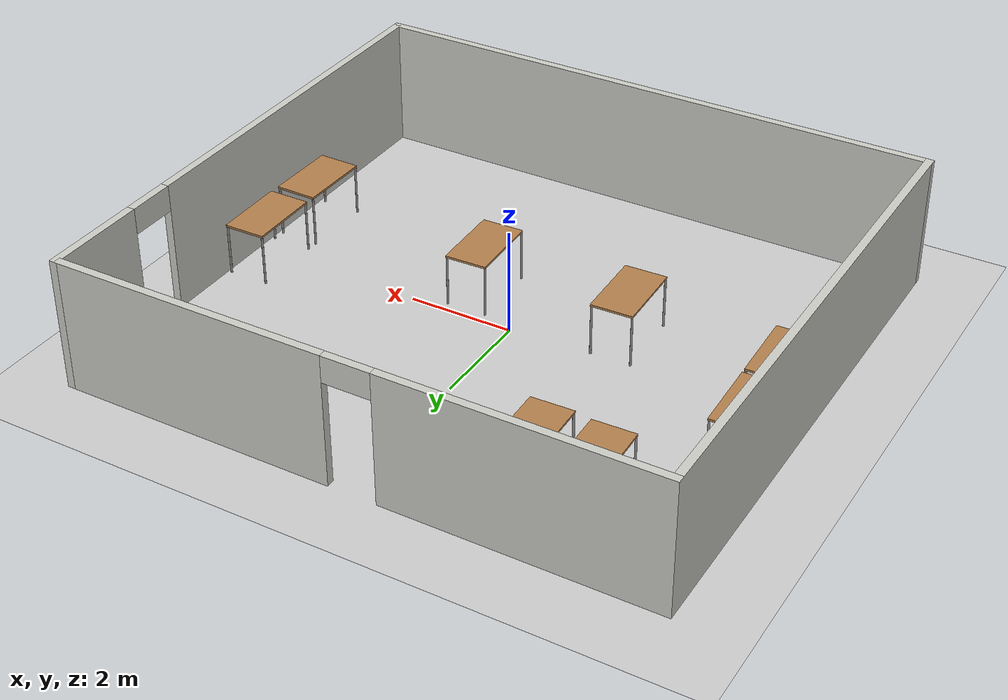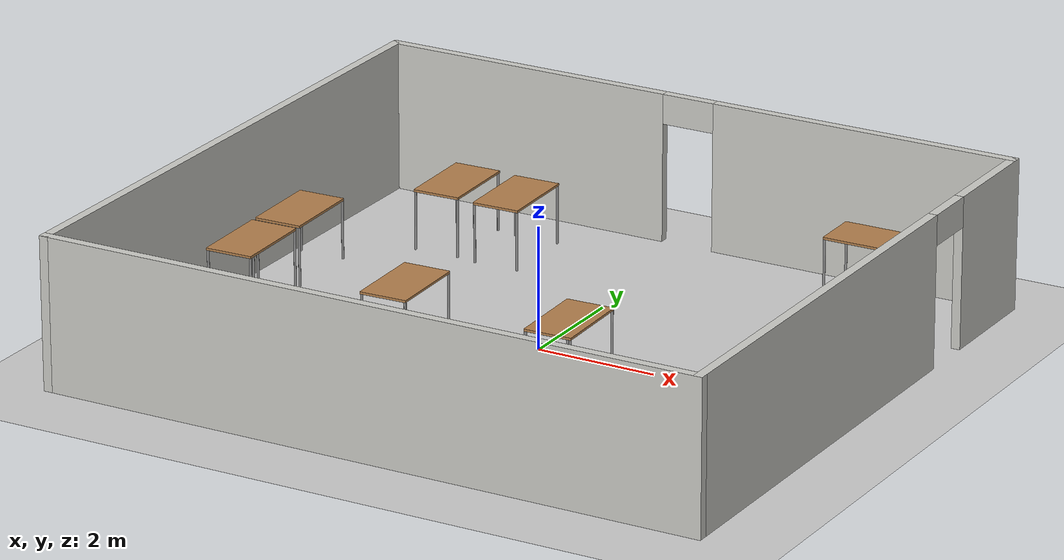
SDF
<sdf version="1.6">
 <world name="default">
  <light name="sun" type="directional">
   <pose>0 0 10 0 -0 0</pose>
   <diffuse>0.8 0.8 0.8 1</diffuse>
   <specular>0.1 0.1 0.1 1</specular>
   <attenuation>
    <range>1000</range>
    <constant>0.9</constant>
    <linear>0.01</linear>
    <quadratic>0.001</quadratic>
   </attenuation>
   <direction>-0.5 0.5 -1</direction>
  </light>
  <model name="ground_plane">
   <static>1</static>
   <link name="link">
    <collision name="collision">
     <geometry><plane><normal>0 0 1</normal><size>100 100</size></plane></geometry>
     <surface><friction><ode><mu>100</mu><mu2>50</mu2></ode></friction></surface>
    </collision>
    <visual name="visual">
     <cast_shadows>0</cast_shadows>
     <geometry><plane><normal>0 0 1</normal><size>100 100</size></plane></geometry>
     <material>
      <script><uri>file://media/materials/scripts/gazebo.material</uri><name>Gazebo/Grey</name></script>
     </material>
    </visual>
   </link>
  </model>
  <gravity>0 0 -9.8</gravity>
  <magnetic_field>6e-06 2.3e-05 -4.2e-05</magnetic_field>
  <atmosphere type="adiabatic"/>
  <physics name="default_physics" default="0" type="ode">
   <max_step_size>0.001</max_step_size>
   <real_time_factor>1</real_time_factor>
   <real_time_update_rate>1000</real_time_update_rate>
  </physics>
  <scene><ambient>0.4 0.4 0.4 1</ambient><background>0.7 0.7 0.7 1</background><shadows>1</shadows></scene>
  <spherical_coordinates>
   <surface_model>EARTH_WGS84</surface_model>
   <latitude_deg>0</latitude_deg>
   <longitude_deg>0</longitude_deg>
   <elevation>0</elevation>
   <heading_deg>0</heading_deg>
  </spherical_coordinates>
  <model name="RRL">
   <pose>-0.0225 -0.0055 0 0 -0 0</pose>
   <link name="Wall_0">
    <pose>0 5.0615 0 0 -0 0</pose>
    <visual name="Wall_0_Visual_0">
     <pose>-3.08879 0 1.25 0 -0 0</pose>
     <geometry><box><size>5.04943 0.15 2.5</size></box></geometry>
     <material>
      <script><uri>file://media/materials/scripts/gazebo.material</uri><name>Gazebo/CeilingTiled</name></script>
      <ambient>1 1 1 1</ambient>
     </material>
    </visual>
    <collision name="Wall_0_Collision_0">
     <geometry><box><size>5.04943 0.15 2.5</size></box></geometry>
     <pose>-3.08879 0 1.25 0 -0 0</pose>
    </collision>
    <visual name="Wall_0_Visual_1">
     <pose>2.97472 0 1.25 0 -0 0</pose>
     <geometry><box><size>5.27757 0.15 2.5</size></box></geometry>
     <material>
      <script><uri>file://media/materials/scripts/gazebo.material</uri><name>Gazebo/CeilingTiled</name></script>
      <ambient>1 1 1 1</ambient>
     </material>
    </visual>
    <collision name="Wall_0_Collision_1">
     <geometry><box><size>5.27757 0.15 2.5</size></box></geometry>
     <pose>2.97472 0 1.25 0 -0 0</pose>
    </collision>
    <visual name="Wall_0_Visual_2">
     <pose>-0.11407 0 2.25 0 -0 0</pose>
     <geometry><box><size>0.9 0.15 0.5</size></box></geometry>
     <material>
      <script><uri>file://media/materials/scripts/gazebo.material</uri><name>Gazebo/CeilingTiled</name></script>
      <ambient>1 1 1 1</ambient>
     </material>
    </visual>
    <collision name="Wall_0_Collision_2">
     <geometry><box><size>0.9 0.15 0.5</size></box></geometry>
     <pose>-0.11407 0 2.25 0 -0 0</pose>
    </collision>
   </link>
   <link name="Wall_1">
    <pose>5.5385 0 0 0 0 -1.5708</pose>
    <visual name="Wall_1_Visual_0">
     <pose>-4.16484 0 1.25 0 -0 0</pose>
     <geometry><box><size>1.94333 0.15 2.5</size></box></geometry>
     <material>
      <script><uri>file://media/materials/scripts/gazebo.material</uri><name>Gazebo/CeilingTiled</name></script>
      <ambient>1 1 1 1</ambient>
     </material>
    </visual>
    <collision name="Wall_1_Collision_0">
     <geometry><box><size>1.94333 0.15 2.5</size></box></geometry>
     <pose>-4.16484 0 1.25 0 -0 0</pose>
    </collision>
    <visual name="Wall_1_Visual_1">
     <pose>1.42166 0 1.25 0 -0 0</pose>
     <geometry><box><size>7.42967 0.15 2.5</size></box></geometry>
     <material>
      <script><uri>file://media/materials/scripts/gazebo.material</uri><name>Gazebo/CeilingTiled</name></script>
      <ambient>1 1 1 1</ambient>
     </material>
    </visual>
    <collision name="Wall_1_Collision_1">
     <geometry><box><size>7.42967 0.15 2.5</size></box></geometry>
     <pose>1.42166 0 1.25 0 -0 0</pose>
    </collision>
    <visual name="Wall_1_Visual_2">
     <pose>-2.74317 0 2.25 0 -0 0</pose>
     <geometry><box><size>0.9 0.15 0.5</size></box></geometry>
     <material>
      <script><uri>file://media/materials/scripts/gazebo.material</uri><name>Gazebo/CeilingTiled</name></script>
      <ambient>1 1 1 1</ambient>
     </material>
    </visual>
    <collision name="Wall_1_Collision_2">
     <geometry><box><size>0.9 0.15 0.5</size></box></geometry>
     <pose>-2.74317 0 2.25 0 -0 0</pose>
    </collision>
   </link>
   <link name="Wall_2">
    <collision name="Wall_2_Collision">
     <geometry><box><size>11.227 0.15 2.5</size></box></geometry>
     <pose>0 0 1.25 0 -0 0</pose>
    </collision>
    <visual name="Wall_2_Visual">
     <pose>0 0 1.25 0 -0 0</pose>
     <geometry><box><size>11.227 0.15 2.5</size></box></geometry>
     <material>
      <script><uri>file://media/materials/scripts/gazebo.material</uri><name>Gazebo/CeilingTiled</name></script>
      <ambient>1 1 1 1</ambient>
     </material>
    </visual>
    <pose>0 -5.0615 0 0 -0 3.14159</pose>
   </link>
   <link name="Wall_3">
    <collision name="Wall_3_Collision">
     <geometry><box><size>10.273 0.15 2.5</size></box></geometry>
     <pose>0 0 1.25 0 -0 0</pose>
    </collision>
    <visual name="Wall_3_Visual">
     <pose>0 0 1.25 0 -0 0</pose>
     <geometry><box><size>10.273 0.15 2.5</size></box></geometry>
     <material>
      <script><uri>file://media/materials/scripts/gazebo.material</uri><name>Gazebo/CeilingTiled</name></script>
      <ambient>1 1 1 1</ambient>
     </material>
    </visual>
    <pose>-5.5385 0 0 0 -0 1.5708</pose>
   </link>
   <static>1</static>
  </model>
  <model name="table">
   <static>0</static>
   <link name="link">
    <collision name="surface">
     <pose>0 0 1 0 -0 0</pose>
     <geometry><box><size>1.5 0.8 0.03</size></box></geometry>
     <surface><friction><ode><mu>0.6</mu><mu2>0.6</mu2></ode></friction></surface>
    </collision>
    <visual name="visual1">
     <pose>0 0 1 0 -0 0</pose>
     <geometry><box><size>1.4 0.8 0.04</size></box></geometry>
     <material>
      <script><uri>file://media/materials/scripts/gazebo.material</uri><name>Gazebo/Wood</name></script>
     </material>
    </visual>
    <collision name="front_left_leg">
     <pose>0.68 0.38 0.5 0 -0 0</pose>
     <geometry><cylinder><radius>0.02</radius><length>1</length></cylinder></geometry>
    </collision>
    <visual name="front_left_leg">
     <pose>0.68 0.38 0.5 0 -0 0</pose>
     <geometry><cylinder><radius>0.02</radius><length>1</length></cylinder></geometry>
     <material>
      <script><uri>file://media/materials/scripts/gazebo.material</uri><name>Gazebo/Grey</name></script>
     </material>
    </visual>
    <collision name="front_right_leg">
     <pose>0.68 -0.38 0.5 0 -0 0</pose>
     <geometry><cylinder><radius>0.02</radius><length>1</length></cylinder></geometry>
    </collision>
    <visual name="front_right_leg">
     <pose>0.68 -0.38 0.5 0 -0 0</pose>
     <geometry><cylinder><radius>0.02</radius><length>1</length></cylinder></geometry>
     <material>
      <script><uri>file://media/materials/scripts/gazebo.material</uri><name>Gazebo/Grey</name></script>
     </material>
    </visual>
    <collision name="back_right_leg">
     <pose>-0.68 -0.38 0.5 0 -0 0</pose>
     <geometry><cylinder><radius>0.02</radius><length>1</length></cylinder></geometry>
    </collision>
    <visual name="back_right_leg">
     <pose>-0.68 -0.38 0.5 0 -0 0</pose>
     <geometry><cylinder><radius>0.02</radius><length>1</length></cylinder></geometry>
     <material>
      <script><uri>file://media/materials/scripts/gazebo.material</uri><name>Gazebo/Grey</name></script>
     </material>
    </visual>
    <collision name="back_left_leg">
     <pose>-0.68 0.38 0.5 0 -0 0</pose>
     <geometry><cylinder><radius>0.02</radius><length>1</length></cylinder></geometry>
    </collision>
    <visual name="back_left_leg">
     <pose>-0.68 0.38 0.5 0 -0 0</pose>
     <geometry><cylinder><radius>0.02</radius><length>1</length></cylinder></geometry>
     <material>
      <script><uri>file://media/materials/scripts/gazebo.material</uri><name>Gazebo/Grey</name></script>
     </material>
    </visual>
    <inertial>
     <inertia><ixx>1</ixx><ixy>0</ixy><ixz>0</ixz><iyy>1</iyy><iyz>0</iyz><izz>1</izz></inertia>
     <mass>1</mass>
    </inertial>
   </link>
   <pose>-3.46678 3.42401 -1e-06 0 -2e-06 1.60194</pose>
  </model>
  <model name="table_clone">
   <static>0</static>
   <link name="link">
    <collision name="surface">
     <pose>0 0 1 0 -0 0</pose>
     <geometry><box><size>1.5 0.8 0.03</size></box></geometry>
     <surface><friction><ode><mu>0.6</mu><mu2>0.6</mu2></ode></friction></surface>
    </collision>
    <visual name="visual1">
     <pose>0 0 1 0 -0 0</pose>
     <geometry><box><size>1.4 0.8 0.04</size></box></geometry>
     <material>
      <script><uri>file://media/materials/scripts/gazebo.material</uri><name>Gazebo/Wood</name></script>
     </material>
    </visual>
    <collision name="front_left_leg">
     <pose>0.68 0.38 0.5 0 -0 0</pose>
     <geometry><cylinder><radius>0.02</radius><length>1</length></cylinder></geometry>
    </collision>
    <visual name="front_left_leg">
     <pose>0.68 0.38 0.5 0 -0 0</pose>
     <geometry><cylinder><radius>0.02</radius><length>1</length></cylinder></geometry>
     <material>
      <script><uri>file://media/materials/scripts/gazebo.material</uri><name>Gazebo/Grey</name></script>
     </material>
    </visual>
    <collision name="front_right_leg">
     <pose>0.68 -0.38 0.5 0 -0 0</pose>
     <geometry><cylinder><radius>0.02</radius><length>1</length></cylinder></geometry>
    </collision>
    <visual name="front_right_leg">
     <pose>0.68 -0.38 0.5 0 -0 0</pose>
     <geometry><cylinder><radius>0.02</radius><length>1</length></cylinder></geometry>
     <material>
      <script><uri>file://media/materials/scripts/gazebo.material</uri><name>Gazebo/Grey</name></script>
     </material>
    </visual>
    <collision name="back_right_leg">
     <pose>-0.68 -0.38 0.5 0 -0 0</pose>
     <geometry><cylinder><radius>0.02</radius><length>1</length></cylinder></geometry>
    </collision>
    <visual name="back_right_leg">
     <pose>-0.68 -0.38 0.5 0 -0 0</pose>
     <geometry><cylinder><radius>0.02</radius><length>1</length></cylinder></geometry>
     <material>
      <script><uri>file://media/materials/scripts/gazebo.material</uri><name>Gazebo/Grey</name></script>
     </material>
    </visual>
    <collision name="back_left_leg">
     <pose>-0.68 0.38 0.5 0 -0 0</pose>
     <geometry><cylinder><radius>0.02</radius><length>1</length></cylinder></geometry>
    </collision>
    <visual name="back_left_leg">
     <pose>-0.68 0.38 0.5 0 -0 0</pose>
     <geometry><cylinder><radius>0.02</radius><length>1</length></cylinder></geometry>
     <material>
      <script><uri>file://media/materials/scripts/gazebo.material</uri><name>Gazebo/Grey</name></script>
     </material>
    </visual>
    <inertial>
     <inertia><ixx>1</ixx><ixy>0</ixy><ixz>0</ixz><iyy>1</iyy><iyz>0</iyz><izz>1</izz></inertia>
     <mass>1</mass>
    </inertial>
   </link>
   <pose>-2.35743 3.38661 0 0 -0 1.60194</pose>
  </model>
  <model name="table_clone_0">
   <static>0</static>
   <link name="link">
    <collision name="surface">
     <pose>0 0 1 0 -0 0</pose>
     <geometry><box><size>1.5 0.8 0.03</size></box></geometry>
     <surface><friction><ode><mu>0.6</mu><mu2>0.6</mu2></ode></friction></surface>
    </collision>
    <visual name="visual1">
     <pose>0 0 1 0 -0 0</pose>
     <geometry><box><size>1.4 0.8 0.04</size></box></geometry>
     <material>
      <script><uri>file://media/materials/scripts/gazebo.material</uri><name>Gazebo/Wood</name></script>
     </material>
    </visual>
    <collision name="front_left_leg">
     <pose>0.68 0.38 0.5 0 -0 0</pose>
     <geometry><cylinder><radius>0.02</radius><length>1</length></cylinder></geometry>
    </collision>
    <visual name="front_left_leg">
     <pose>0.68 0.38 0.5 0 -0 0</pose>
     <geometry><cylinder><radius>0.02</radius><length>1</length></cylinder></geometry>
     <material>
      <script><uri>file://media/materials/scripts/gazebo.material</uri><name>Gazebo/Grey</name></script>
     </material>
    </visual>
    <collision name="front_right_leg">
     <pose>0.68 -0.38 0.5 0 -0 0</pose>
     <geometry><cylinder><radius>0.02</radius><length>1</length></cylinder></geometry>
    </collision>
    <visual name="front_right_leg">
     <pose>0.68 -0.38 0.5 0 -0 0</pose>
     <geometry><cylinder><radius>0.02</radius><length>1</length></cylinder></geometry>
     <material>
      <script><uri>file://media/materials/scripts/gazebo.material</uri><name>Gazebo/Grey</name></script>
     </material>
    </visual>
    <collision name="back_right_leg">
     <pose>-0.68 -0.38 0.5 0 -0 0</pose>
     <geometry><cylinder><radius>0.02</radius><length>1</length></cylinder></geometry>
    </collision>
    <visual name="back_right_leg">
     <pose>-0.68 -0.38 0.5 0 -0 0</pose>
     <geometry><cylinder><radius>0.02</radius><length>1</length></cylinder></geometry>
     <material>
      <script><uri>file://media/materials/scripts/gazebo.material</uri><name>Gazebo/Grey</name></script>
     </material>
    </visual>
    <collision name="back_left_leg">
     <pose>-0.68 0.38 0.5 0 -0 0</pose>
     <geometry><cylinder><radius>0.02</radius><length>1</length></cylinder></geometry>
    </collision>
    <visual name="back_left_leg">
     <pose>-0.68 0.38 0.5 0 -0 0</pose>
     <geometry><cylinder><radius>0.02</radius><length>1</length></cylinder></geometry>
     <material>
      <script><uri>file://media/materials/scripts/gazebo.material</uri><name>Gazebo/Grey</name></script>
     </material>
    </visual>
    <inertial>
     <inertia><ixx>1</ixx><ixy>0</ixy><ixz>0</ixz><iyy>1</iyy><iyz>0</iyz><izz>1</izz></inertia>
     <mass>1</mass>
    </inertial>
   </link>
   <pose>-4.97769 1.10851 0 0 -0 1.60165</pose>
  </model>
  <model name="table_clone_0_clone">
   <static>0</static>
   <link name="link">
    <collision name="surface">
     <pose>0 0 1 0 -0 0</pose>
     <geometry><box><size>1.5 0.8 0.03</size></box></geometry>
     <surface><friction><ode><mu>0.6</mu><mu2>0.6</mu2></ode></friction></surface>
    </collision>
    <visual name="visual1">
     <pose>0 0 1 0 -0 0</pose>
     <geometry><box><size>1.4 0.8 0.04</size></box></geometry>
     <material>
      <script><uri>file://media/materials/scripts/gazebo.material</uri><name>Gazebo/Wood</name></script>
     </material>
    </visual>
    <collision name="front_left_leg">
     <pose>0.68 0.38 0.5 0 -0 0</pose>
     <geometry><cylinder><radius>0.02</radius><length>1</length></cylinder></geometry>
    </collision>
    <visual name="front_left_leg">
     <pose>0.68 0.38 0.5 0 -0 0</pose>
     <geometry><cylinder><radius>0.02</radius><length>1</length></cylinder></geometry>
     <material>
      <script><uri>file://media/materials/scripts/gazebo.material</uri><name>Gazebo/Grey</name></script>
     </material>
    </visual>
    <collision name="front_right_leg">
     <pose>0.68 -0.38 0.5 0 -0 0</pose>
     <geometry><cylinder><radius>0.02</radius><length>1</length></cylinder></geometry>
    </collision>
    <visual name="front_right_leg">
     <pose>0.68 -0.38 0.5 0 -0 0</pose>
     <geometry><cylinder><radius>0.02</radius><length>1</length></cylinder></geometry>
     <material>
      <script><uri>file://media/materials/scripts/gazebo.material</uri><name>Gazebo/Grey</name></script>
     </material>
    </visual>
    <collision name="back_right_leg">
     <pose>-0.68 -0.38 0.5 0 -0 0</pose>
     <geometry><cylinder><radius>0.02</radius><length>1</length></cylinder></geometry>
    </collision>
    <visual name="back_right_leg">
     <pose>-0.68 -0.38 0.5 0 -0 0</pose>
     <geometry><cylinder><radius>0.02</radius><length>1</length></cylinder></geometry>
     <material>
      <script><uri>file://media/materials/scripts/gazebo.material</uri><name>Gazebo/Grey</name></script>
     </material>
    </visual>
    <collision name="back_left_leg">
     <pose>-0.68 0.38 0.5 0 -0 0</pose>
     <geometry><cylinder><radius>0.02</radius><length>1</length></cylinder></geometry>
    </collision>
    <visual name="back_left_leg">
     <pose>-0.68 0.38 0.5 0 -0 0</pose>
     <geometry><cylinder><radius>0.02</radius><length>1</length></cylinder></geometry>
     <material>
      <script><uri>file://media/materials/scripts/gazebo.material</uri><name>Gazebo/Grey</name></script>
     </material>
    </visual>
    <inertial>
     <inertia><ixx>1</ixx><ixy>0</ixy><ixz>0</ixz><iyy>1</iyy><iyz>0</iyz><izz>1</izz></inertia>
     <mass>1</mass>
    </inertial>
   </link>
   <pose>-4.93017 -0.390751 0 0 -0 1.60165</pose>
  </model>
  <model name="table_clone_0_clone_clone">
   <static>0</static>
   <link name="link">
    <collision name="surface">
     <pose>0 0 1 0 -0 0</pose>
     <geometry><box><size>1.5 0.8 0.03</size></box></geometry>
     <surface><friction><ode><mu>0.6</mu><mu2>0.6</mu2></ode></friction></surface>
    </collision>
    <visual name="visual1">
     <pose>0 0 1 0 -0 0</pose>
     <geometry><box><size>1.4 0.8 0.04</size></box></geometry>
     <material>
      <script><uri>file://media/materials/scripts/gazebo.material</uri><name>Gazebo/Wood</name></script>
     </material>
    </visual>
    <collision name="front_left_leg">
     <pose>0.68 0.38 0.5 0 -0 0</pose>
     <geometry><cylinder><radius>0.02</radius><length>1</length></cylinder></geometry>
    </collision>
    <visual name="front_left_leg">
     <pose>0.68 0.38 0.5 0 -0 0</pose>
     <geometry><cylinder><radius>0.02</radius><length>1</length></cylinder></geometry>
     <material>
      <script><uri>file://media/materials/scripts/gazebo.material</uri><name>Gazebo/Grey</name></script>
     </material>
    </visual>
    <collision name="front_right_leg">
     <pose>0.68 -0.38 0.5 0 -0 0</pose>
     <geometry><cylinder><radius>0.02</radius><length>1</length></cylinder></geometry>
    </collision>
    <visual name="front_right_leg">
     <pose>0.68 -0.38 0.5 0 -0 0</pose>
     <geometry><cylinder><radius>0.02</radius><length>1</length></cylinder></geometry>
     <material>
      <script><uri>file://media/materials/scripts/gazebo.material</uri><name>Gazebo/Grey</name></script>
     </material>
    </visual>
    <collision name="back_right_leg">
     <pose>-0.68 -0.38 0.5 0 -0 0</pose>
     <geometry><cylinder><radius>0.02</radius><length>1</length></cylinder></geometry>
    </collision>
    <visual name="back_right_leg">
     <pose>-0.68 -0.38 0.5 0 -0 0</pose>
     <geometry><cylinder><radius>0.02</radius><length>1</length></cylinder></geometry>
     <material>
      <script><uri>file://media/materials/scripts/gazebo.material</uri><name>Gazebo/Grey</name></script>
     </material>
    </visual>
    <collision name="back_left_leg">
     <pose>-0.68 0.38 0.5 0 -0 0</pose>
     <geometry><cylinder><radius>0.02</radius><length>1</length></cylinder></geometry>
    </collision>
    <visual name="back_left_leg">
     <pose>-0.68 0.38 0.5 0 -0 0</pose>
     <geometry><cylinder><radius>0.02</radius><length>1</length></cylinder></geometry>
     <material>
      <script><uri>file://media/materials/scripts/gazebo.material</uri><name>Gazebo/Grey</name></script>
     </material>
    </visual>
    <inertial>
     <inertia><ixx>1</ixx><ixy>0</ixy><ixz>0</ixz><iyy>1</iyy><iyz>0</iyz><izz>1</izz></inertia>
     <mass>1</mass>
    </inertial>
   </link>
   <pose>-1.90242 -0.790905 -1e-06 0 -2e-06 1.60194</pose>
  </model>
  <model name="table_clone_0_clone_clone_0">
   <static>0</static>
   <link name="link">
    <collision name="surface">
     <pose>0 0 1 0 -0 0</pose>
     <geometry><box><size>1.5 0.8 0.03</size></box></geometry>
     <surface><friction><ode><mu>0.6</mu><mu2>0.6</mu2></ode></friction></surface>
    </collision>
    <visual name="visual1">
     <pose>0 0 1 0 -0 0</pose>
     <geometry><box><size>1.4 0.8 0.04</size></box></geometry>
     <material>
      <script><uri>file://media/materials/scripts/gazebo.material</uri><name>Gazebo/Wood</name></script>
     </material>
    </visual>
    <collision name="front_left_leg">
     <pose>0.68 0.38 0.5 0 -0 0</pose>
     <geometry><cylinder><radius>0.02</radius><length>1</length></cylinder></geometry>
    </collision>
    <visual name="front_left_leg">
     <pose>0.68 0.38 0.5 0 -0 0</pose>
     <geometry><cylinder><radius>0.02</radius><length>1</length></cylinder></geometry>
     <material>
      <script><uri>file://media/materials/scripts/gazebo.material</uri><name>Gazebo/Grey</name></script>
     </material>
    </visual>
    <collision name="front_right_leg">
     <pose>0.68 -0.38 0.5 0 -0 0</pose>
     <geometry><cylinder><radius>0.02</radius><length>1</length></cylinder></geometry>
    </collision>
    <visual name="front_right_leg">
     <pose>0.68 -0.38 0.5 0 -0 0</pose>
     <geometry><cylinder><radius>0.02</radius><length>1</length></cylinder></geometry>
     <material>
      <script><uri>file://media/materials/scripts/gazebo.material</uri><name>Gazebo/Grey</name></script>
     </material>
    </visual>
    <collision name="back_right_leg">
     <pose>-0.68 -0.38 0.5 0 -0 0</pose>
     <geometry><cylinder><radius>0.02</radius><length>1</length></cylinder></geometry>
    </collision>
    <visual name="back_right_leg">
     <pose>-0.68 -0.38 0.5 0 -0 0</pose>
     <geometry><cylinder><radius>0.02</radius><length>1</length></cylinder></geometry>
     <material>
      <script><uri>file://media/materials/scripts/gazebo.material</uri><name>Gazebo/Grey</name></script>
     </material>
    </visual>
    <collision name="back_left_leg">
     <pose>-0.68 0.38 0.5 0 -0 0</pose>
     <geometry><cylinder><radius>0.02</radius><length>1</length></cylinder></geometry>
    </collision>
    <visual name="back_left_leg">
     <pose>-0.68 0.38 0.5 0 -0 0</pose>
     <geometry><cylinder><radius>0.02</radius><length>1</length></cylinder></geometry>
     <material>
      <script><uri>file://media/materials/scripts/gazebo.material</uri><name>Gazebo/Grey</name></script>
     </material>
    </visual>
    <inertial>
     <inertia><ixx>1</ixx><ixy>0</ixy><ixz>0</ixz><iyy>1</iyy><iyz>0</iyz><izz>1</izz></inertia>
     <mass>1</mass>
    </inertial>
   </link>
   <pose>1.0256 -0.875778 -1e-06 0 -2e-06 1.60194</pose>
  </model>
  <model name="table_clone_0_clone_clone_0_clone">
   <static>0</static>
   <link name="link">
    <collision name="surface">
     <pose>0 0 1 0 -0 0</pose>
     <geometry><box><size>1.5 0.8 0.03</size></box></geometry>
     <surface><friction><ode><mu>0.6</mu><mu2>0.6</mu2></ode></friction></surface>
    </collision>
    <visual name="visual1">
     <pose>0 0 1 0 -0 0</pose>
     <geometry><box><size>1.4 0.8 0.04</size></box></geometry>
     <material>
      <script><uri>file://media/materials/scripts/gazebo.material</uri><name>Gazebo/Wood</name></script>
     </material>
    </visual>
    <collision name="front_left_leg">
     <pose>0.68 0.38 0.5 0 -0 0</pose>
     <geometry><cylinder><radius>0.02</radius><length>1</length></cylinder></geometry>
    </collision>
    <visual name="front_left_leg">
     <pose>0.68 0.38 0.5 0 -0 0</pose>
     <geometry><cylinder><radius>0.02</radius><length>1</length></cylinder></geometry>
     <material>
      <script><uri>file://media/materials/scripts/gazebo.material</uri><name>Gazebo/Grey</name></script>
     </material>
    </visual>
    <collision name="front_right_leg">
     <pose>0.68 -0.38 0.5 0 -0 0</pose>
     <geometry><cylinder><radius>0.02</radius><length>1</length></cylinder></geometry>
    </collision>
    <visual name="front_right_leg">
     <pose>0.68 -0.38 0.5 0 -0 0</pose>
     <geometry><cylinder><radius>0.02</radius><length>1</length></cylinder></geometry>
     <material>
      <script><uri>file://media/materials/scripts/gazebo.material</uri><name>Gazebo/Grey</name></script>
     </material>
    </visual>
    <collision name="back_right_leg">
     <pose>-0.68 -0.38 0.5 0 -0 0</pose>
     <geometry><cylinder><radius>0.02</radius><length>1</length></cylinder></geometry>
    </collision>
    <visual name="back_right_leg">
     <pose>-0.68 -0.38 0.5 0 -0 0</pose>
     <geometry><cylinder><radius>0.02</radius><length>1</length></cylinder></geometry>
     <material>
      <script><uri>file://media/materials/scripts/gazebo.material</uri><name>Gazebo/Grey</name></script>
     </material>
    </visual>
    <collision name="back_left_leg">
     <pose>-0.68 0.38 0.5 0 -0 0</pose>
     <geometry><cylinder><radius>0.02</radius><length>1</length></cylinder></geometry>
    </collision>
    <visual name="back_left_leg">
     <pose>-0.68 0.38 0.5 0 -0 0</pose>
     <geometry><cylinder><radius>0.02</radius><length>1</length></cylinder></geometry>
     <material>
      <script><uri>file://media/materials/scripts/gazebo.material</uri><name>Gazebo/Grey</name></script>
     </material>
    </visual>
    <inertial>
     <inertia><ixx>1</ixx><ixy>0</ixy><ixz>0</ixz><iyy>1</iyy><iyz>0</iyz><izz>1</izz></inertia>
     <mass>1</mass>
    </inertial>
   </link>
   <pose>3.46693 4.46373 -1e-06 0 2e-06 -3.13584</pose>
  </model>
  <model name="table_clone_0_clone_clone_0_clone_0">
   <static>0</static>
   <link name="link">
    <collision name="surface">
     <pose>0 0 1 0 -0 0</pose>
     <geometry><box><size>1.5 0.8 0.03</size></box></geometry>
     <surface><friction><ode><mu>0.6</mu><mu2>0.6</mu2></ode></friction></surface>
    </collision>
    <visual name="visual1">
     <pose>0 0 1 0 -0 0</pose>
     <geometry><box><size>1.4 0.8 0.04</size></box></geometry>
     <material>
      <script><uri>file://media/materials/scripts/gazebo.material</uri><name>Gazebo/Wood</name></script>
     </material>
    </visual>
    <collision name="front_left_leg">
     <pose>0.68 0.38 0.5 0 -0 0</pose>
     <geometry><cylinder><radius>0.02</radius><length>1</length></cylinder></geometry>
    </collision>
    <visual name="front_left_leg">
     <pose>0.68 0.38 0.5 0 -0 0</pose>
     <geometry><cylinder><radius>0.02</radius><length>1</length></cylinder></geometry>
     <material>
      <script><uri>file://media/materials/scripts/gazebo.material</uri><name>Gazebo/Grey</name></script>
     </material>
    </visual>
    <collision name="front_right_leg">
     <pose>0.68 -0.38 0.5 0 -0 0</pose>
     <geometry><cylinder><radius>0.02</radius><length>1</length></cylinder></geometry>
    </collision>
    <visual name="front_right_leg">
     <pose>0.68 -0.38 0.5 0 -0 0</pose>
     <geometry><cylinder><radius>0.02</radius><length>1</length></cylinder></geometry>
     <material>
      <script><uri>file://media/materials/scripts/gazebo.material</uri><name>Gazebo/Grey</name></script>
     </material>
    </visual>
    <collision name="back_right_leg">
     <pose>-0.68 -0.38 0.5 0 -0 0</pose>
     <geometry><cylinder><radius>0.02</radius><length>1</length></cylinder></geometry>
    </collision>
    <visual name="back_right_leg">
     <pose>-0.68 -0.38 0.5 0 -0 0</pose>
     <geometry><cylinder><radius>0.02</radius><length>1</length></cylinder></geometry>
     <material>
      <script><uri>file://media/materials/scripts/gazebo.material</uri><name>Gazebo/Grey</name></script>
     </material>
    </visual>
    <collision name="back_left_leg">
     <pose>-0.68 0.38 0.5 0 -0 0</pose>
     <geometry><cylinder><radius>0.02</radius><length>1</length></cylinder></geometry>
    </collision>
    <visual name="back_left_leg">
     <pose>-0.68 0.38 0.5 0 -0 0</pose>
     <geometry><cylinder><radius>0.02</radius><length>1</length></cylinder></geometry>
     <material>
      <script><uri>file://media/materials/scripts/gazebo.material</uri><name>Gazebo/Grey</name></script>
     </material>
    </visual>
    <inertial>
     <inertia><ixx>1</ixx><ixy>0</ixy><ixz>0</ixz><iyy>1</iyy><iyz>0</iyz><izz>1</izz></inertia>
     <mass>1</mass>
    </inertial>
   </link>
   <pose>4.99059 0.230341 -1e-06 0 2e-06 1.57752</pose>
  </model>
  <model name="table_clone_0_clone_clone_0_clone_0_clone">
   <static>0</static>
   <link name="link">
    <collision name="surface">
     <pose>0 0 1 0 -0 0</pose>
     <geometry><box><size>1.5 0.8 0.03</size></box></geometry>
     <surface><friction><ode><mu>0.6</mu><mu2>0.6</mu2></ode></friction></surface>
    </collision>
    <visual name="visual1">
     <pose>0 0 1 0 -0 0</pose>
     <geometry><box><size>1.4 0.8 0.04</size></box></geometry>
     <material>
      <script><uri>file://media/materials/scripts/gazebo.material</uri><name>Gazebo/Wood</name></script>
     </material>
    </visual>
    <collision name="front_left_leg">
     <pose>0.68 0.38 0.5 0 -0 0</pose>
     <geometry><cylinder><radius>0.02</radius><length>1</length></cylinder></geometry>
    </collision>
    <visual name="front_left_leg">
     <pose>0.68 0.38 0.5 0 -0 0</pose>
     <geometry><cylinder><radius>0.02</radius><length>1</length></cylinder></geometry>
     <material>
      <script><uri>file://media/materials/scripts/gazebo.material</uri><name>Gazebo/Grey</name></script>
     </material>
    </visual>
    <collision name="front_right_leg">
     <pose>0.68 -0.38 0.5 0 -0 0</pose>
     <geometry><cylinder><radius>0.02</radius><length>1</length></cylinder></geometry>
    </collision>
    <visual name="front_right_leg">
     <pose>0.68 -0.38 0.5 0 -0 0</pose>
     <geometry><cylinder><radius>0.02</radius><length>1</length></cylinder></geometry>
     <material>
      <script><uri>file://media/materials/scripts/gazebo.material</uri><name>Gazebo/Grey</name></script>
     </material>
    </visual>
    <collision name="back_right_leg">
     <pose>-0.68 -0.38 0.5 0 -0 0</pose>
     <geometry><cylinder><radius>0.02</radius><length>1</length></cylinder></geometry>
    </collision>
    <visual name="back_right_leg">
     <pose>-0.68 -0.38 0.5 0 -0 0</pose>
     <geometry><cylinder><radius>0.02</radius><length>1</length></cylinder></geometry>
     <material>
      <script><uri>file://media/materials/scripts/gazebo.material</uri><name>Gazebo/Grey</name></script>
     </material>
    </visual>
    <collision name="back_left_leg">
     <pose>-0.68 0.38 0.5 0 -0 0</pose>
     <geometry><cylinder><radius>0.02</radius><length>1</length></cylinder></geometry>
    </collision>
    <visual name="back_left_leg">
     <pose>-0.68 0.38 0.5 0 -0 0</pose>
     <geometry><cylinder><radius>0.02</radius><length>1</length></cylinder></geometry>
     <material>
      <script><uri>file://media/materials/scripts/gazebo.material</uri><name>Gazebo/Grey</name></script>
     </material>
    </visual>
    <inertial>
     <inertia><ixx>1</ixx><ixy>0</ixy><ixz>0</ixz><iyy>1</iyy><iyz>0</iyz><izz>1</izz></inertia>
     <mass>1</mass>
    </inertial>
   </link>
   <pose>4.96853 -1.3573 -3e-06 -2e-06 4e-06 1.55384</pose>
  </model>
 </world>
</sdf>
